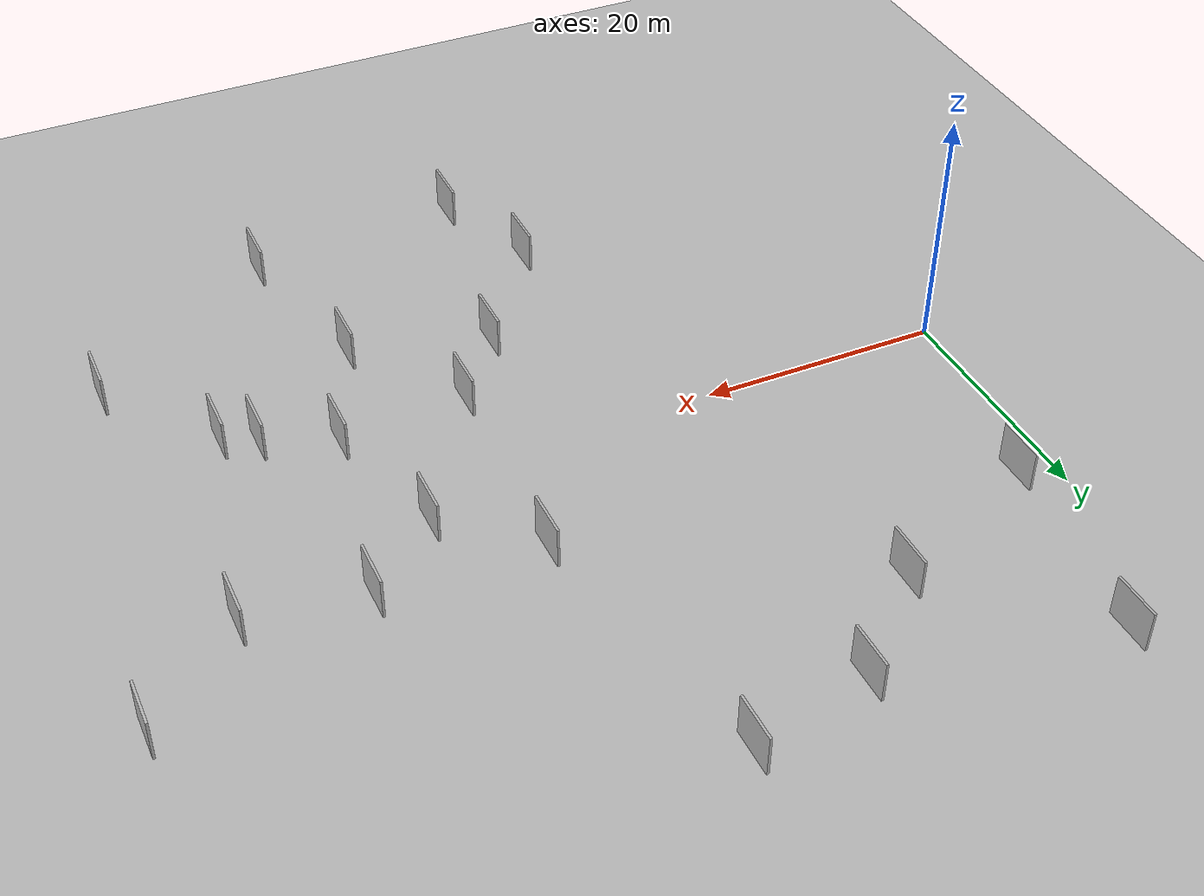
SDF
<?xml version="1.0" encoding="utf-8"?>

<sdf version="1.6">

   <world name="default">

      <gui fullscreen="0">

         <camera name="user_camera">

            <pose>-15 0 4.57585 0 0 0</pose>

            <view_controller>orbit</view_controller>

         </camera>

      </gui>

      <scene>

         <sky>

           <clouds>

             <speed>12</speed>

           </clouds>

         </sky>

         <ambient>0.4 0.4 0.4 1</ambient>

         <background>0.7 0.7 0.7 1</background>

         <shadows>1</shadows>

      </scene>

      <gravity>0 0 -9.8066</gravity>

      <magnetic_field>6e-06 2.3e-05 -4.2e-05</magnetic_field>

      <physics default="0" name="default_physics" type="ode">

         <ode>

            <solver>

               <type>quick</type>

               <iters>10</iters>

               <sor>1.0</sor>

               <use_dynamic_moi_rescaling>0</use_dynamic_moi_rescaling>

            </solver>

            <constraints>

               <cfm>0</cfm>

               <erp>0.2</erp>

               <contact_max_correcting_vel>100</contact_max_correcting_vel>

               <contact_surface_layer>0.001</contact_surface_layer>

            </constraints>

         </ode>

         <max_step_size>0.004</max_step_size>

         <real_time_factor>1</real_time_factor>

         <real_time_update_rate>250</real_time_update_rate>

      </physics>

      <light name="sun" type="directional">

         <cast_shadows>1</cast_shadows>

         <pose>0 0 10 0 0 0</pose>

         <diffuse>0.8 0.8 0.8 1</diffuse>

         <specular>0.2 0.2 0.2 1</specular>

         <attenuation>

            <range>1000</range>

            <constant>0.9</constant>

            <linear>0.01</linear>

            <quadratic>0.001</quadratic>

         </attenuation>

         <direction>-0.5 0.1 -0.9</direction>

      </light>

      <include>

         <name>ground_plane_1</name>

         <uri>model://HANNAS_ground_plane</uri>

         <pose>0 0 0  0 0 0</pose>

      </include>

      <include>

         <name>ground_plane_2</name>

         <uri>model://HANNAS_ground_plane</uri>

         <pose>100 0 0  0 0 0</pose>

      </include>

      <model name="HANNAS_wall_1">

         <static>1</static>

         <pose frame="">38.9085 11.0571 0.0 0.000000 0.000000 1.570796</pose>

         <link name="link">

            <pose frame="">0 0 2.00 0 0 0</pose>

            <collision name="collision">

               <geometry>

                  <box>

                     <size>4.00 0.2 4.00</size>

                  </box>

               </geometry>

               <max_contacts>10</max_contacts>

               <surface>

                  <contact>

                     <ode/>

                  </contact>

                  <bounce/>

                  <friction>

                     <torsional>

                        <ode/>

                     </torsional>

                     <ode/>

                  </friction>

               </surface>

            </collision>

            <visual name="visual">

               <cast_shadows>0</cast_shadows>

               <geometry>

                  <box>

                     <size>4.00 0.2 4.00</size>

                  </box>

               </geometry>

               <material>

                  <script>

                     <uri>model://HANNAS_wall/materials/scripts</uri>

                     <uri>model://HANNAS_wall/materials/textures</uri>

                     <name>vrc/HANNAS_wall</name>

                  </script>

               </material>

            </visual>

            <self_collide>0</self_collide>

            <enable_wind>0</enable_wind>

            <kinematic>0</kinematic>

         </link>

      </model>

      <model name="HANNAS_wall_2">

         <static>1</static>

         <pose frame="">5.6826 34.9874 0.0 0.000000 0.000000 1.570796</pose>

         <link name="link">

            <pose frame="">0 0 2.00 0 0 0</pose>

            <collision name="collision">

               <geometry>

                  <box>

                     <size>4.00 0.2 4.00</size>

                  </box>

               </geometry>

               <max_contacts>10</max_contacts>

               <surface>

                  <contact>

                     <ode/>

                  </contact>

                  <bounce/>

                  <friction>

                     <torsional>

                        <ode/>

                     </torsional>

                     <ode/>

                  </friction>

               </surface>

            </collision>

            <visual name="visual">

               <cast_shadows>0</cast_shadows>

               <geometry>

                  <box>

                     <size>4.00 0.2 4.00</size>

                  </box>

               </geometry>

               <material>

                  <script>

                     <uri>model://HANNAS_wall/materials/scripts</uri>

                     <uri>model://HANNAS_wall/materials/textures</uri>

                     <name>vrc/HANNAS_wall</name>

                  </script>

               </material>

            </visual>

            <self_collide>0</self_collide>

            <enable_wind>0</enable_wind>

            <kinematic>0</kinematic>

         </link>

      </model>

      <model name="HANNAS_wall_3">

         <static>1</static>

         <pose frame="">54.5707 -8.5110 0.0 0.000000 0.000000 1.570796</pose>

         <link name="link">

            <pose frame="">0 0 2.00 0 0 0</pose>

            <collision name="collision">

               <geometry>

                  <box>

                     <size>4.00 0.2 4.00</size>

                  </box>

               </geometry>

               <max_contacts>10</max_contacts>

               <surface>

                  <contact>

                     <ode/>

                  </contact>

                  <bounce/>

                  <friction>

                     <torsional>

                        <ode/>

                     </torsional>

                     <ode/>

                  </friction>

               </surface>

            </collision>

            <visual name="visual">

               <cast_shadows>0</cast_shadows>

               <geometry>

                  <box>

                     <size>4.00 0.2 4.00</size>

                  </box>

               </geometry>

               <material>

                  <script>

                     <uri>model://HANNAS_wall/materials/scripts</uri>

                     <uri>model://HANNAS_wall/materials/textures</uri>

                     <name>vrc/HANNAS_wall</name>

                  </script>

               </material>

            </visual>

            <self_collide>0</self_collide>

            <enable_wind>0</enable_wind>

            <kinematic>0</kinematic>

         </link>

      </model>

      <model name="HANNAS_wall_4">

         <static>1</static>

         <pose frame="">45.7292 5.1613 0.0 0.000000 0.000000 1.570796</pose>

         <link name="link">

            <pose frame="">0 0 2.00 0 0 0</pose>

            <collision name="collision">

               <geometry>

                  <box>

                     <size>4.00 0.2 4.00</size>

                  </box>

               </geometry>

               <max_contacts>10</max_contacts>

               <surface>

                  <contact>

                     <ode/>

                  </contact>

                  <bounce/>

                  <friction>

                     <torsional>

                        <ode/>

                     </torsional>

                     <ode/>

                  </friction>

               </surface>

            </collision>

            <visual name="visual">

               <cast_shadows>0</cast_shadows>

               <geometry>

                  <box>

                     <size>4.00 0.2 4.00</size>

                  </box>

               </geometry>

               <material>

                  <script>

                     <uri>model://HANNAS_wall/materials/scripts</uri>

                     <uri>model://HANNAS_wall/materials/textures</uri>

                     <name>vrc/HANNAS_wall</name>

                  </script>

               </material>

            </visual>

            <self_collide>0</self_collide>

            <enable_wind>0</enable_wind>

            <kinematic>0</kinematic>

         </link>

      </model>

      <model name="HANNAS_wall_5">

         <static>1</static>

         <pose frame="">26.5713 -22.8059 0.0 0.000000 0.000000 1.570796</pose>

         <link name="link">

            <pose frame="">0 0 2.00 0 0 0</pose>

            <collision name="collision">

               <geometry>

                  <box>

                     <size>4.00 0.2 4.00</size>

                  </box>

               </geometry>

               <max_contacts>10</max_contacts>

               <surface>

                  <contact>

                     <ode/>

                  </contact>

                  <bounce/>

                  <friction>

                     <torsional>

                        <ode/>

                     </torsional>

                     <ode/>

                  </friction>

               </surface>

            </collision>

            <visual name="visual">

               <cast_shadows>0</cast_shadows>

               <geometry>

                  <box>

                     <size>4.00 0.2 4.00</size>

                  </box>

               </geometry>

               <material>

                  <script>

                     <uri>model://HANNAS_wall/materials/scripts</uri>

                     <uri>model://HANNAS_wall/materials/textures</uri>

                     <name>vrc/HANNAS_wall</name>

                  </script>

               </material>

            </visual>

            <self_collide>0</self_collide>

            <enable_wind>0</enable_wind>

            <kinematic>0</kinematic>

         </link>

      </model>

      <model name="HANNAS_wall_6">

         <static>1</static>

         <pose frame="">69.7417 16.3689 0.0 0.000000 0.000000 1.570796</pose>

         <link name="link">

            <pose frame="">0 0 2.00 0 0 0</pose>

            <collision name="collision">

               <geometry>

                  <box>

                     <size>4.00 0.2 4.00</size>

                  </box>

               </geometry>

               <max_contacts>10</max_contacts>

               <surface>

                  <contact>

                     <ode/>

                  </contact>

                  <bounce/>

                  <friction>

                     <torsional>

                        <ode/>

                     </torsional>

                     <ode/>

                  </friction>

               </surface>

            </collision>

            <visual name="visual">

               <cast_shadows>0</cast_shadows>

               <geometry>

                  <box>

                     <size>4.00 0.2 4.00</size>

                  </box>

               </geometry>

               <material>

                  <script>

                     <uri>model://HANNAS_wall/materials/scripts</uri>

                     <uri>model://HANNAS_wall/materials/textures</uri>

                     <name>vrc/HANNAS_wall</name>

                  </script>

               </material>

            </visual>

            <self_collide>0</self_collide>

            <enable_wind>0</enable_wind>

            <kinematic>0</kinematic>

         </link>

      </model>

      <model name="HANNAS_wall_7">

         <static>1</static>

         <pose frame="">38.1925 -6.8814 0.0 0.000000 0.000000 1.570796</pose>

         <link name="link">

            <pose frame="">0 0 2.00 0 0 0</pose>

            <collision name="collision">

               <geometry>

                  <box>

                     <size>4.00 0.2 4.00</size>

                  </box>

               </geometry>

               <max_contacts>10</max_contacts>

               <surface>

                  <contact>

                     <ode/>

                  </contact>

                  <bounce/>

                  <friction>

                     <torsional>

                        <ode/>

                     </torsional>

                     <ode/>

                  </friction>

               </surface>

            </collision>

            <visual name="visual">

               <cast_shadows>0</cast_shadows>

               <geometry>

                  <box>

                     <size>4.00 0.2 4.00</size>

                  </box>

               </geometry>

               <material>

                  <script>

                     <uri>model://HANNAS_wall/materials/scripts</uri>

                     <uri>model://HANNAS_wall/materials/textures</uri>

                     <name>vrc/HANNAS_wall</name>

                  </script>

               </material>

            </visual>

            <self_collide>0</self_collide>

            <enable_wind>0</enable_wind>

            <kinematic>0</kinematic>

         </link>

      </model>

      <model name="HANNAS_wall_8">

         <static>1</static>

         <pose frame="">17.0410 24.4234 0.0 0.000000 0.000000 1.570796</pose>

         <link name="link">

            <pose frame="">0 0 2.00 0 0 0</pose>

            <collision name="collision">

               <geometry>

                  <box>

                     <size>4.00 0.2 4.00</size>

                  </box>

               </geometry>

               <max_contacts>10</max_contacts>

               <surface>

                  <contact>

                     <ode/>

                  </contact>

                  <bounce/>

                  <friction>

                     <torsional>

                        <ode/>

                     </torsional>

                     <ode/>

                  </friction>

               </surface>

            </collision>

            <visual name="visual">

               <cast_shadows>0</cast_shadows>

               <geometry>

                  <box>

                     <size>4.00 0.2 4.00</size>

                  </box>

               </geometry>

               <material>

                  <script>

                     <uri>model://HANNAS_wall/materials/scripts</uri>

                     <uri>model://HANNAS_wall/materials/textures</uri>

                     <name>vrc/HANNAS_wall</name>

                  </script>

               </material>

            </visual>

            <self_collide>0</self_collide>

            <enable_wind>0</enable_wind>

            <kinematic>0</kinematic>

         </link>

      </model>

      <model name="HANNAS_wall_9">

         <static>1</static>

         <pose frame="">30.0498 -31.7685 0.0 0.000000 0.000000 1.570796</pose>

         <link name="link">

            <pose frame="">0 0 2.00 0 0 0</pose>

            <collision name="collision">

               <geometry>

                  <box>

                     <size>4.00 0.2 4.00</size>

                  </box>

               </geometry>

               <max_contacts>10</max_contacts>

               <surface>

                  <contact>

                     <ode/>

                  </contact>

                  <bounce/>

                  <friction>

                     <torsional>

                        <ode/>

                     </torsional>

                     <ode/>

                  </friction>

               </surface>

            </collision>

            <visual name="visual">

               <cast_shadows>0</cast_shadows>

               <geometry>

                  <box>

                     <size>4.00 0.2 4.00</size>

                  </box>

               </geometry>

               <material>

                  <script>

                     <uri>model://HANNAS_wall/materials/scripts</uri>

                     <uri>model://HANNAS_wall/materials/textures</uri>

                     <name>vrc/HANNAS_wall</name>

                  </script>

               </material>

            </visual>

            <self_collide>0</self_collide>

            <enable_wind>0</enable_wind>

            <kinematic>0</kinematic>

         </link>

      </model>

      <model name="HANNAS_wall_10">

         <static>1</static>

         <pose frame="">61.5124 9.2708 0.0 0.000000 0.000000 1.570796</pose>

         <link name="link">

            <pose frame="">0 0 2.00 0 0 0</pose>

            <collision name="collision">

               <geometry>

                  <box>

                     <size>4.00 0.2 4.00</size>

                  </box>

               </geometry>

               <max_contacts>10</max_contacts>

               <surface>

                  <contact>

                     <ode/>

                  </contact>

                  <bounce/>

                  <friction>

                     <torsional>

                        <ode/>

                     </torsional>

                     <ode/>

                  </friction>

               </surface>

            </collision>

            <visual name="visual">

               <cast_shadows>0</cast_shadows>

               <geometry>

                  <box>

                     <size>4.00 0.2 4.00</size>

                  </box>

               </geometry>

               <material>

                  <script>

                     <uri>model://HANNAS_wall/materials/scripts</uri>

                     <uri>model://HANNAS_wall/materials/textures</uri>

                     <name>vrc/HANNAS_wall</name>

                  </script>

               </material>

            </visual>

            <self_collide>0</self_collide>

            <enable_wind>0</enable_wind>

            <kinematic>0</kinematic>

         </link>

      </model>

      <model name="HANNAS_wall_11">

         <static>1</static>

         <pose frame="">44.7983 -16.2417 0.0 0.000000 0.000000 1.570796</pose>

         <link name="link">

            <pose frame="">0 0 2.00 0 0 0</pose>

            <collision name="collision">

               <geometry>

                  <box>

                     <size>4.00 0.2 4.00</size>

                  </box>

               </geometry>

               <max_contacts>10</max_contacts>

               <surface>

                  <contact>

                     <ode/>

                  </contact>

                  <bounce/>

                  <friction>

                     <torsional>

                        <ode/>

                     </torsional>

                     <ode/>

                  </friction>

               </surface>

            </collision>

            <visual name="visual">

               <cast_shadows>0</cast_shadows>

               <geometry>

                  <box>

                     <size>4.00 0.2 4.00</size>

                  </box>

               </geometry>

               <material>

                  <script>

                     <uri>model://HANNAS_wall/materials/scripts</uri>

                     <uri>model://HANNAS_wall/materials/textures</uri>

                     <name>vrc/HANNAS_wall</name>

                  </script>

               </material>

            </visual>

            <self_collide>0</self_collide>

            <enable_wind>0</enable_wind>

            <kinematic>0</kinematic>

         </link>

      </model>

      <model name="HANNAS_wall_12">

         <static>1</static>

         <pose frame="">48.8252 -6.0174 0.0 0.000000 0.000000 1.570796</pose>

         <link name="link">

            <pose frame="">0 0 2.00 0 0 0</pose>

            <collision name="collision">

               <geometry>

                  <box>

                     <size>4.00 0.2 4.00</size>

                  </box>

               </geometry>

               <max_contacts>10</max_contacts>

               <surface>

                  <contact>

                     <ode/>

                  </contact>

                  <bounce/>

                  <friction>

                     <torsional>

                        <ode/>

                     </torsional>

                     <ode/>

                  </friction>

               </surface>

            </collision>

            <visual name="visual">

               <cast_shadows>0</cast_shadows>

               <geometry>

                  <box>

                     <size>4.00 0.2 4.00</size>

                  </box>

               </geometry>

               <material>

                  <script>

                     <uri>model://HANNAS_wall/materials/scripts</uri>

                     <uri>model://HANNAS_wall/materials/textures</uri>

                     <name>vrc/HANNAS_wall</name>

                  </script>

               </material>

            </visual>

            <self_collide>0</self_collide>

            <enable_wind>0</enable_wind>

            <kinematic>0</kinematic>

         </link>

      </model>

      <model name="HANNAS_wall_13">

         <static>1</static>

         <pose frame="">51.9696 10.6356 0.0 0.000000 0.000000 1.570796</pose>

         <link name="link">

            <pose frame="">0 0 2.00 0 0 0</pose>

            <collision name="collision">

               <geometry>

                  <box>

                     <size>4.00 0.2 4.00</size>

                  </box>

               </geometry>

               <max_contacts>10</max_contacts>

               <surface>

                  <contact>

                     <ode/>

                  </contact>

                  <bounce/>

                  <friction>

                     <torsional>

                        <ode/>

                     </torsional>

                     <ode/>

                  </friction>

               </surface>

            </collision>

            <visual name="visual">

               <cast_shadows>0</cast_shadows>

               <geometry>

                  <box>

                     <size>4.00 0.2 4.00</size>

                  </box>

               </geometry>

               <material>

                  <script>

                     <uri>model://HANNAS_wall/materials/scripts</uri>

                     <uri>model://HANNAS_wall/materials/textures</uri>

                     <name>vrc/HANNAS_wall</name>

                  </script>

               </material>

            </visual>

            <self_collide>0</self_collide>

            <enable_wind>0</enable_wind>

            <kinematic>0</kinematic>

         </link>

      </model>

      <model name="HANNAS_wall_14">

         <static>1</static>

         <pose frame="">64.2931 -18.7359 0.0 0.000000 0.000000 1.570796</pose>

         <link name="link">

            <pose frame="">0 0 2.00 0 0 0</pose>

            <collision name="collision">

               <geometry>

                  <box>

                     <size>4.00 0.2 4.00</size>

                  </box>

               </geometry>

               <max_contacts>10</max_contacts>

               <surface>

                  <contact>

                     <ode/>

                  </contact>

                  <bounce/>

                  <friction>

                     <torsional>

                        <ode/>

                     </torsional>

                     <ode/>

                  </friction>

               </surface>

            </collision>

            <visual name="visual">

               <cast_shadows>0</cast_shadows>

               <geometry>

                  <box>

                     <size>4.00 0.2 4.00</size>

                  </box>

               </geometry>

               <material>

                  <script>

                     <uri>model://HANNAS_wall/materials/scripts</uri>

                     <uri>model://HANNAS_wall/materials/textures</uri>

                     <name>vrc/HANNAS_wall</name>

                  </script>

               </material>

            </visual>

            <self_collide>0</self_collide>

            <enable_wind>0</enable_wind>

            <kinematic>0</kinematic>

         </link>

      </model>

      <model name="HANNAS_wall_15">

         <static>1</static>

         <pose frame="">3.5482 18.2294 0.0 0.000000 0.000000 1.570796</pose>

         <link name="link">

            <pose frame="">0 0 2.00 0 0 0</pose>

            <collision name="collision">

               <geometry>

                  <box>

                     <size>4.00 0.2 4.00</size>

                  </box>

               </geometry>

               <max_contacts>10</max_contacts>

               <surface>

                  <contact>

                     <ode/>

                  </contact>

                  <bounce/>

                  <friction>

                     <torsional>

                        <ode/>

                     </torsional>

                     <ode/>

                  </friction>

               </surface>

            </collision>

            <visual name="visual">

               <cast_shadows>0</cast_shadows>

               <geometry>

                  <box>

                     <size>4.00 0.2 4.00</size>

                  </box>

               </geometry>

               <material>

                  <script>

                     <uri>model://HANNAS_wall/materials/scripts</uri>

                     <uri>model://HANNAS_wall/materials/textures</uri>

                     <name>vrc/HANNAS_wall</name>

                  </script>

               </material>

            </visual>

            <self_collide>0</self_collide>

            <enable_wind>0</enable_wind>

            <kinematic>0</kinematic>

         </link>

      </model>

      <model name="HANNAS_wall_16">

         <static>1</static>

         <pose frame="">57.2522 -9.8718 0.0 0.000000 0.000000 1.570796</pose>

         <link name="link">

            <pose frame="">0 0 2.00 0 0 0</pose>

            <collision name="collision">

               <geometry>

                  <box>

                     <size>4.00 0.2 4.00</size>

                  </box>

               </geometry>

               <max_contacts>10</max_contacts>

               <surface>

                  <contact>

                     <ode/>

                  </contact>

                  <bounce/>

                  <friction>

                     <torsional>

                        <ode/>

                     </torsional>

                     <ode/>

                  </friction>

               </surface>

            </collision>

            <visual name="visual">

               <cast_shadows>0</cast_shadows>

               <geometry>

                  <box>

                     <size>4.00 0.2 4.00</size>

                  </box>

               </geometry>

               <material>

                  <script>

                     <uri>model://HANNAS_wall/materials/scripts</uri>

                     <uri>model://HANNAS_wall/materials/textures</uri>

                     <name>vrc/HANNAS_wall</name>

                  </script>

               </material>

            </visual>

            <self_collide>0</self_collide>

            <enable_wind>0</enable_wind>

            <kinematic>0</kinematic>

         </link>

      </model>

      <model name="HANNAS_wall_17">

         <static>1</static>

         <pose frame="">24.4171 31.4657 0.0 0.000000 0.000000 1.570796</pose>

         <link name="link">

            <pose frame="">0 0 2.00 0 0 0</pose>

            <collision name="collision">

               <geometry>

                  <box>

                     <size>4.00 0.2 4.00</size>

                  </box>

               </geometry>

               <max_contacts>10</max_contacts>

               <surface>

                  <contact>

                     <ode/>

                  </contact>

                  <bounce/>

                  <friction>

                     <torsional>

                        <ode/>

                     </torsional>

                     <ode/>

                  </friction>

               </surface>

            </collision>

            <visual name="visual">

               <cast_shadows>0</cast_shadows>

               <geometry>

                  <box>

                     <size>4.00 0.2 4.00</size>

                  </box>

               </geometry>

               <material>

                  <script>

                     <uri>model://HANNAS_wall/materials/scripts</uri>

                     <uri>model://HANNAS_wall/materials/textures</uri>

                     <name>vrc/HANNAS_wall</name>

                  </script>

               </material>

            </visual>

            <self_collide>0</self_collide>

            <enable_wind>0</enable_wind>

            <kinematic>0</kinematic>

         </link>

      </model>

      <model name="HANNAS_wall_18">

         <static>1</static>

         <pose frame="">34.3332 33.7647 0.0 0.000000 0.000000 1.570796</pose>

         <link name="link">

            <pose frame="">0 0 2.00 0 0 0</pose>

            <collision name="collision">

               <geometry>

                  <box>

                     <size>4.00 0.2 4.00</size>

                  </box>

               </geometry>

               <max_contacts>10</max_contacts>

               <surface>

                  <contact>

                     <ode/>

                  </contact>

                  <bounce/>

                  <friction>

                     <torsional>

                        <ode/>

                     </torsional>

                     <ode/>

                  </friction>

               </surface>

            </collision>

            <visual name="visual">

               <cast_shadows>0</cast_shadows>

               <geometry>

                  <box>

                     <size>4.00 0.2 4.00</size>

                  </box>

               </geometry>

               <material>

                  <script>

                     <uri>model://HANNAS_wall/materials/scripts</uri>

                     <uri>model://HANNAS_wall/materials/textures</uri>

                     <name>vrc/HANNAS_wall</name>

                  </script>

               </material>

            </visual>

            <self_collide>0</self_collide>

            <enable_wind>0</enable_wind>

            <kinematic>0</kinematic>

         </link>

      </model>

      <model name="HANNAS_wall_19">

         <static>1</static>

         <pose frame="">48.0445 -30.0251 0.0 0.000000 0.000000 1.570796</pose>

         <link name="link">

            <pose frame="">0 0 2.00 0 0 0</pose>

            <collision name="collision">

               <geometry>

                  <box>

                     <size>4.00 0.2 4.00</size>

                  </box>

               </geometry>

               <max_contacts>10</max_contacts>

               <surface>

                  <contact>

                     <ode/>

                  </contact>

                  <bounce/>

                  <friction>

                     <torsional>

                        <ode/>

                     </torsional>

                     <ode/>

                  </friction>

               </surface>

            </collision>

            <visual name="visual">

               <cast_shadows>0</cast_shadows>

               <geometry>

                  <box>

                     <size>4.00 0.2 4.00</size>

                  </box>

               </geometry>

               <material>

                  <script>

                     <uri>model://HANNAS_wall/materials/scripts</uri>

                     <uri>model://HANNAS_wall/materials/textures</uri>

                     <name>vrc/HANNAS_wall</name>

                  </script>

               </material>

            </visual>

            <self_collide>0</self_collide>

            <enable_wind>0</enable_wind>

            <kinematic>0</kinematic>

         </link>

      </model>

      <model name="HANNAS_wall_20">

         <static>1</static>

         <pose frame="">33.5280 -13.0255 0.0 0.000000 0.000000 1.570796</pose>

         <link name="link">

            <pose frame="">0 0 2.00 0 0 0</pose>

            <collision name="collision">

               <geometry>

                  <box>

                     <size>4.00 0.2 4.00</size>

                  </box>

               </geometry>

               <max_contacts>10</max_contacts>

               <surface>

                  <contact>

                     <ode/>

                  </contact>

                  <bounce/>

                  <friction>

                     <torsional>

                        <ode/>

                     </torsional>

                     <ode/>

                  </friction>

               </surface>

            </collision>

            <visual name="visual">

               <cast_shadows>0</cast_shadows>

               <geometry>

                  <box>

                     <size>4.00 0.2 4.00</size>

                  </box>

               </geometry>

               <material>

                  <script>

                     <uri>model://HANNAS_wall/materials/scripts</uri>

                     <uri>model://HANNAS_wall/materials/textures</uri>

                     <name>vrc/HANNAS_wall</name>

                  </script>

               </material>

            </visual>

            <self_collide>0</self_collide>

            <enable_wind>0</enable_wind>

            <kinematic>0</kinematic>

         </link>

      </model>

   </world>

</sdf>

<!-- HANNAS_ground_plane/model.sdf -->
<sdf version="1.4">
<model name="HANNAS_ground_plane">
  <static>true</static>
    <link name="link">
      <collision name="collision">
        <geometry>
          <plane>
            <normal>0 0 1</normal>
            <size>1000 1000</size>
          </plane>
        </geometry>
        <surface>
          <friction>
            <ode>
              <mu>100</mu>
              <mu2>50</mu2>
            </ode>
          </friction>
        </surface>
      </collision>
      <visual name="visual">
        <cast_shadows>false</cast_shadows>
        <geometry>
          <plane>
            <normal>0 0 1</normal>
            <size>1000 1000</size>
          </plane>
        </geometry>
        <material>
          <script>
            <uri>model://HANNAS_ground_plane/materials/scripts/HANNAS_ground_plane.material</uri>
	    <uri>model://HANNAS_ground_plane/materials/textures</uri>
            <name>HANNASGroundPlane/Image</name>
          </script>
        </material>
      </visual>
    </link>
  </model>
</sdf>
